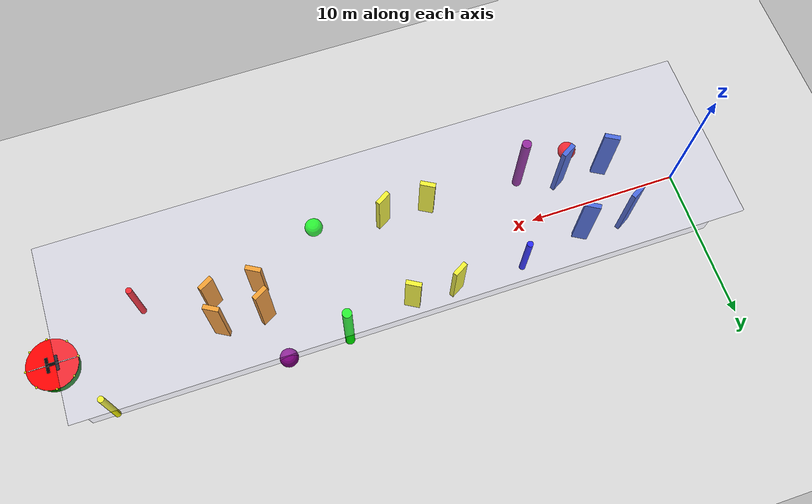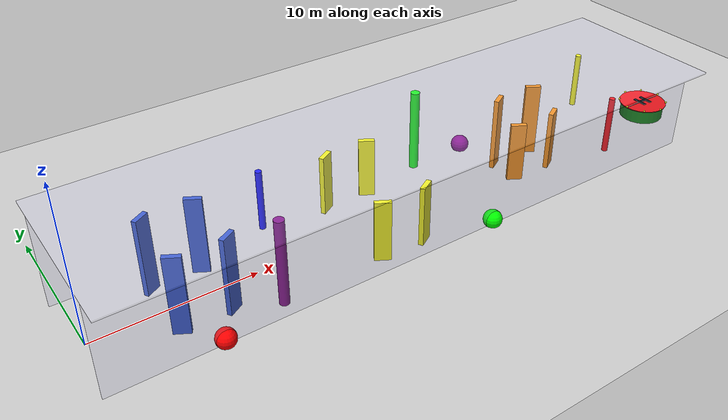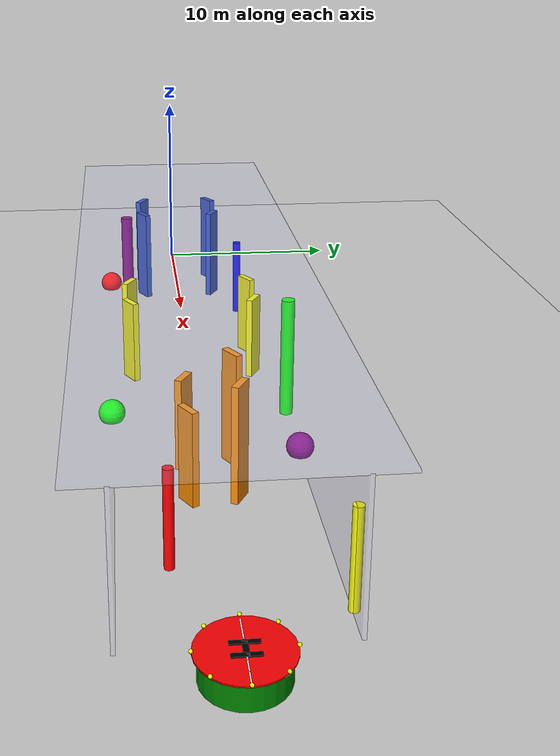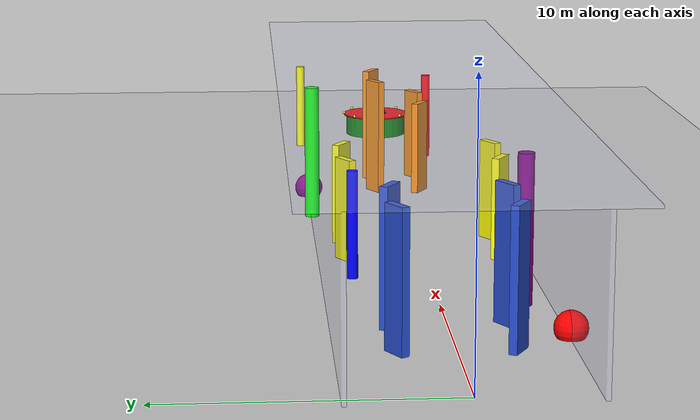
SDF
<sdf version="1.7">
 <world name="default">
  <light name="sun" type="directional">
   <pose>0 0 10 0 -0 0</pose>
   <diffuse>0.8 0.8 0.8 1</diffuse>
   <specular>0.2 0.2 0.2 1</specular>
   <attenuation>
    <range>1000</range>
    <constant>0.9</constant>
    <linear>0.01</linear>
    <quadratic>0.001</quadratic>
   </attenuation>
   <direction>-0.5 0.1 -0.9</direction>
   <spot><inner_angle>0</inner_angle><outer_angle>0</outer_angle><falloff>0</falloff></spot>
  </light>
  <model name="ground_plane">
   <static>1</static>
   <link name="link">
    <collision name="collision">
     <geometry><plane><normal>0 0 1</normal><size>50 50</size></plane></geometry>
     <surface>
      <contact><collide_bitmask>65535</collide_bitmask></contact>
      <friction><ode><mu>100</mu><mu2>50</mu2></ode></friction>
     </surface>
    </collision>
    <visual name="visual">
     <cast_shadows>0</cast_shadows>
     <geometry><plane><normal>0 0 1</normal><size>100 100</size></plane></geometry>
     <material>
      <script><uri>file://media/materials/scripts/gazebo.material</uri><name>Gazebo/Grey</name></script>
     </material>
    </visual>
   </link>
  </model>
  <gravity>0 0 -9.8</gravity>
  <magnetic_field>6e-06 2.3e-05 -4.2e-05</magnetic_field>
  <atmosphere type="adiabatic"/>
  <physics type="ode">
   <max_step_size>0.001</max_step_size>
   <real_time_factor>1</real_time_factor>
   <real_time_update_rate>1000</real_time_update_rate>
  </physics>
  <spherical_coordinates>
   <surface_model>EARTH_WGS84</surface_model>
   <latitude_deg>0</latitude_deg>
   <longitude_deg>0</longitude_deg>
   <elevation>0</elevation>
   <heading_deg>0</heading_deg>
  </spherical_coordinates>
  <model name="corridor">
   <pose>20 0 0 0 -0 0</pose>
   <link name="Wall_0">
    <collision name="Wall_0_Collision">
     <geometry><box><size>41.15 0.15 6.0</size></box></geometry>
     <pose>0 0 3.0 0 -0 0</pose>
    </collision>
    <visual name="Wall_0_Visual">
     <pose>0 0 3.0 0 -0 0</pose>
     <geometry><box><size>41.15 0.15 6.0</size></box></geometry>
     <material>
      <script><uri>file://media/materials/scripts/gazebo.material</uri></script>
      <ambient>0.8 0.8 1 0.2</ambient>
      <diffuse>0.8 0.8 1 0.2</diffuse>
     </material>
     <meta><layer>0</layer></meta>
    </visual>
    <pose>0 4 0 0 -0 0</pose>
   </link>
   <link name="Wall_2">
    <collision name="Wall_2_Collision">
     <geometry><box><size>41.15 0.15 6.0</size></box></geometry>
     <pose>0 0 3.0 0 -0 0</pose>
    </collision>
    <visual name="Wall_2_Visual">
     <pose>0 0 3.0 0 -0 0</pose>
     <geometry><box><size>41.15 0.15 6.0</size></box></geometry>
     <material>
      <script><uri>file://media/materials/scripts/gazebo.material</uri></script>
      <ambient>0.8 0.8 1 0.2</ambient>
      <diffuse>0.8 0.8 1 0.2</diffuse>
     </material>
     <meta><layer>0</layer></meta>
    </visual>
    <pose>0 -4 0 0 -0 0</pose>
   </link>
   <static>1</static>
   <link name="roof_transparent">
    <pose>0 0 6.0 0 0 0</pose>
    <collision name="roof_collision"><geometry><box><size>41.15 11 0.1</size></box></geometry></collision>
    <visual name="roof_visual">
     <geometry><box><size>41.15 11 0.1</size></box></geometry>
     <material>
      <ambient>0.8 0.8 1 0.2</ambient>
      <diffuse>0.8 0.8 1 0.2</diffuse>
      <specular>0.9 0.9 0.9 0.2</specular>
     </material>
     <transparency>0.8</transparency>
    </visual>
   </link>
  </model>
  <model name="helipad_marker_taller_base_1m">
   <static>true</static>
   <link name="helipad_link">
    <visual name="helipad_base">
     <geometry><cylinder><radius>1.5</radius><length>1.0</length></cylinder></geometry>
     <material><ambient>0 0.4 0 1</ambient><diffuse>0 0.5 0 1</diffuse></material>
     <pose>0 0 0.5 0 0 0</pose>
    </visual>
    <visual name="outer_ring">
     <geometry><cylinder><radius>1.65</radius><length>0.05</length></cylinder></geometry>
     <material><ambient>1 0 0 1</ambient><diffuse>1 0 0 1</diffuse></material>
     <pose>0 0 1.02 0 0 0</pose>
    </visual>
    <visual name="line_1">
     <geometry><box><size>3 0.05 0.02</size></box></geometry>
     <material><ambient>1 1 1 1</ambient><diffuse>1 1 1 1</diffuse></material>
     <pose>0 0 1.04 0 0 0</pose>
    </visual>
    <visual name="line_2">
     <geometry><box><size>2 0.05 0.02</size></box></geometry>
     <material><ambient>1 1 1 1</ambient><diffuse>1 1 1 1</diffuse></material>
     <pose>0 0 1.06 0 0 0</pose>
    </visual>
    <visual name="line_3">
     <geometry><box><size>1 0.05 0.02</size></box></geometry>
     <material><ambient>1 1 1 1</ambient><diffuse>1 1 1 1</diffuse></material>
     <pose>0 0 1.08 0 0 0</pose>
    </visual>
    <visual name="helipad_H1">
     <geometry><box><size>0.2 1.0 0.04</size></box></geometry>
     <material><ambient>0 0 0 1</ambient><diffuse>0 0 0 1</diffuse></material>
     <pose>-0.3 0 1.09 0 0 0</pose>
    </visual>
    <visual name="helipad_H2">
     <geometry><box><size>0.2 1.0 0.04</size></box></geometry>
     <material><ambient>0 0 0 1</ambient><diffuse>0 0 0 1</diffuse></material>
     <pose>0.3 0 1.09 0 0 0</pose>
    </visual>
    <visual name="helipad_H3">
     <geometry><box><size>0.8 0.2 0.04</size></box></geometry>
     <material><ambient>0 0 0 1</ambient><diffuse>0 0 0 1</diffuse></material>
     <pose>0 0 1.09 0 0 0</pose>
    </visual>
    <visual name="light_0">
     <geometry><sphere><radius>0.07</radius></sphere></geometry>
     <material><ambient>1 1 0 1</ambient><diffuse>1 1 0 1</diffuse></material>
     <pose>1.65 0 1.10 0 0 0</pose>
    </visual>
    <visual name="light_1">
     <geometry><sphere><radius>0.07</radius></sphere></geometry>
     <material><ambient>1 1 0 1</ambient><diffuse>1 1 0 1</diffuse></material>
     <pose>1.165 1.165 1.10 0 0 0</pose>
    </visual>
    <visual name="light_2">
     <geometry><sphere><radius>0.07</radius></sphere></geometry>
     <material><ambient>1 1 0 1</ambient><diffuse>1 1 0 1</diffuse></material>
     <pose>0 1.65 1.10 0 0 0</pose>
    </visual>
    <visual name="light_3">
     <geometry><sphere><radius>0.07</radius></sphere></geometry>
     <material><ambient>1 1 0 1</ambient><diffuse>1 1 0 1</diffuse></material>
     <pose>-1.165 1.165 1.10 0 0 0</pose>
    </visual>
    <visual name="light_4">
     <geometry><sphere><radius>0.07</radius></sphere></geometry>
     <material><ambient>1 1 0 1</ambient><diffuse>1 1 0 1</diffuse></material>
     <pose>-1.65 0 1.10 0 0 0</pose>
    </visual>
    <visual name="light_5">
     <geometry><sphere><radius>0.07</radius></sphere></geometry>
     <material><ambient>1 1 0 1</ambient><diffuse>1 1 0 1</diffuse></material>
     <pose>-1.165 -1.165 1.10 0 0 0</pose>
    </visual>
    <visual name="light_6">
     <geometry><sphere><radius>0.07</radius></sphere></geometry>
     <material><ambient>1 1 0 1</ambient><diffuse>1 1 0 1</diffuse></material>
     <pose>0 -1.65 1.10 0 0 0</pose>
    </visual>
    <visual name="light_7">
     <geometry><sphere><radius>0.07</radius></sphere></geometry>
     <material><ambient>1 1 0 1</ambient><diffuse>1 1 0 1</diffuse></material>
     <pose>1.165 -1.165 1.10 0 0 0</pose>
    </visual>
   </link>
   <link name="pillar_box">
    <visual name="pillar_visual">
     <geometry><box><size>1 1 0.3</size></box></geometry>
     <material><ambient>0.4 0.4 0.4 1</ambient><diffuse>0.5 0.5 0.5 1</diffuse></material>
     <pose>0 0 -0.15 0 0 0</pose>
    </visual>
    <collision name="pillar_collision">
     <geometry><box><size>1 1 0.3</size></box></geometry>
     <pose>0 0 -0.15 0 0 0</pose>
    </collision>
   </link>
   <pose>42 0 0 0 0 0</pose>
  </model>
  <model name="red_ball_only">
   <pose>6 -4 0.3 0 0 0</pose>
   <link name="link">
    <collision name="collision"><geometry><sphere><radius>0.6</radius></sphere></geometry></collision>
    <visual name="visual">
     <geometry><sphere><radius>0.6</radius></sphere></geometry>
     <material><ambient>1 0 0 1</ambient><diffuse>1 0 0 1</diffuse><specular>0.3 0.1 0.1 1</specular></material>
    </visual>
   </link>
  </model>
  <model name="green_ball_only">
   <pose>24 -4 0.3 0 0 0</pose>
   <link name="link">
    <collision name="collision"><geometry><sphere><radius>0.6</radius></sphere></geometry></collision>
    <visual name="visual">
     <geometry><sphere><radius>0.6</radius></sphere></geometry>
     <material><ambient>0 1 0 1</ambient><diffuse>0 1 0 1</diffuse><specular>0.1 0.3 0.1 1</specular></material>
    </visual>
   </link>
  </model>
  <model name="purple_ball_only">
   <pose>28 4 0.3 0 0 0</pose>
   <link name="link">
    <collision name="collision"><geometry><sphere><radius>0.6</radius></sphere></geometry></collision>
    <visual name="visual">
     <geometry><sphere><radius>0.6</radius></sphere></geometry>
     <material>
      <ambient>0.5 0 0.5 1</ambient>
      <diffuse>0.5 0 0.5 1</diffuse>
      <specular>0.3 0 0.3 1</specular>
     </material>
    </visual>
   </link>
  </model>
  <model name="ring_tunnel_1">
   <static>true</static>
   <link name="wall_2">
    <pose>7.5 2.0 2.5 0 0 1.047</pose>
    <collision name="collision_2"><geometry><box><size>0.3 1.0 5</size></box></geometry></collision>
    <visual name="visual_2">
     <geometry><box><size>0.3 1.0 5</size></box></geometry>
     <material>
      <script><uri>file://media/materials/scripts/gazebo.material</uri><name>Gazebo/Blue</name></script>
     </material>
    </visual>
   </link>
   <link name="wall_3">
    <pose>4.5 2.0 2.5 0 0 2.094</pose>
    <collision name="collision_3"><geometry><box><size>0.3 1.0 5</size></box></geometry></collision>
    <visual name="visual_3">
     <geometry><box><size>0.3 1.0 5</size></box></geometry>
     <material>
      <script><uri>file://media/materials/scripts/gazebo.material</uri><name>Gazebo/Blue</name></script>
     </material>
    </visual>
   </link>
   <link name="wall_5">
    <pose>4.5 -2.0 2.5 0 0 -2.094</pose>
    <collision name="collision_5"><geometry><box><size>0.3 1.0 5</size></box></geometry></collision>
    <visual name="visual_5">
     <geometry><box><size>0.3 1.0 5</size></box></geometry>
     <material>
      <script><uri>file://media/materials/scripts/gazebo.material</uri><name>Gazebo/Blue</name></script>
     </material>
    </visual>
   </link>
   <link name="wall_6">
    <pose>7.5 -2.0 2.5 0 0 -1.047</pose>
    <collision name="collision_6"><geometry><box><size>0.3 1.0 5</size></box></geometry></collision>
    <visual name="visual_6">
     <geometry><box><size>0.3 1.0 5</size></box></geometry>
     <material>
      <script><uri>file://media/materials/scripts/gazebo.material</uri><name>Gazebo/Blue</name></script>
     </material>
    </visual>
   </link>
  </model>
  <model name="ring_tunnel_2">
   <static>true</static>
   <link name="wall_2">
    <pose>19.5 3.0 2.0 0 0 1.047</pose>
    <collision name="collision_2"><geometry><box><size>0.3 1.0 4</size></box></geometry></collision>
    <visual name="visual_2">
     <geometry><box><size>0.3 1.0 4</size></box></geometry>
     <material><ambient>1 1 0 1</ambient><diffuse>1 1 0 1</diffuse></material>
    </visual>
   </link>
   <link name="wall_3">
    <pose>16.5 3.0 2.0 0 0 2.094</pose>
    <collision name="collision_3"><geometry><box><size>0.3 1.0 4</size></box></geometry></collision>
    <visual name="visual_3">
     <geometry><box><size>0.3 1.0 4</size></box></geometry>
     <material><ambient>1 1 0 1</ambient><diffuse>1 1 0 1</diffuse></material>
    </visual>
   </link>
   <link name="wall_5">
    <pose>16.5 -3.0 2.0 0 0 -2.094</pose>
    <collision name="collision_5"><geometry><box><size>0.3 1.0 4</size></box></geometry></collision>
    <visual name="visual_5">
     <geometry><box><size>0.3 1.0 4</size></box></geometry>
     <material><ambient>1 1 0 1</ambient><diffuse>1 1 0 1</diffuse></material>
    </visual>
   </link>
   <link name="wall_6">
    <pose>19.5 -3.0 2.0 0 0 -1.047</pose>
    <collision name="collision_6"><geometry><box><size>0.3 1.0 4</size></box></geometry></collision>
    <visual name="visual_6">
     <geometry><box><size>0.3 1.0 4</size></box></geometry>
     <material><ambient>1 1 0 1</ambient><diffuse>1 1 0 1</diffuse></material>
    </visual>
   </link>
  </model>
  <model name="ring_tunnel_3">
   <static>true</static>
   <link name="wall_2">
    <pose>31.5 1.0 2.5 0 0 1.047</pose>
    <collision name="collision_2"><geometry><box><size>0.3 1.0 5</size></box></geometry></collision>
    <visual name="visual_2">
     <geometry><box><size>0.3 1.0 5</size></box></geometry>
     <material><ambient>1 0.55 0 1</ambient><diffuse>1 0.55 0 1</diffuse></material>
    </visual>
   </link>
   <link name="wall_3">
    <pose>28.5 1.0 2.5 0 0 2.094</pose>
    <collision name="collision_3"><geometry><box><size>0.3 1.0 5</size></box></geometry></collision>
    <visual name="visual_3">
     <geometry><box><size>0.3 1.0 5</size></box></geometry>
     <material><ambient>1 0.55 0 1</ambient><diffuse>1 0.55 0 1</diffuse></material>
    </visual>
   </link>
   <link name="wall_5">
    <pose>28.5 -1.0 1.5 0 0 -2.094</pose>
    <collision name="collision_5"><geometry><box><size>0.3 1.0 5</size></box></geometry></collision>
    <visual name="visual_5">
     <geometry><box><size>0.3 1.0 5</size></box></geometry>
     <material><ambient>1 0.55 0 1</ambient><diffuse>1 0.55 0 1</diffuse></material>
    </visual>
   </link>
   <link name="wall_6">
    <pose>31.5 -1.0 1.5 0 0 -1.047</pose>
    <collision name="collision_6"><geometry><box><size>0.3 1.0 5</size></box></geometry></collision>
    <visual name="visual_6">
     <geometry><box><size>0.3 1.0 5</size></box></geometry>
     <material><ambient>1 0.55 0 1</ambient><diffuse>1 0.55 0 1</diffuse></material>
    </visual>
   </link>
  </model>
  <model name="purpl7e_cylinder">
   <pose>10 -3 2.5 0 0 0</pose>
   <static>1</static>
   <link name="link">
    <collision name="collision">
     <geometry><cylinder><radius>0.3</radius><length>6.0</length></cylinder></geometry>
    </collision>
    <visual name="visual">
     <geometry><cylinder><radius>0.3</radius><length>6.0</length></cylinder></geometry>
     <material>
      <ambient>0.5 0 0.5 1</ambient>
      <diffuse>0.5 0 0.5 1</diffuse>
      <specular>0.3 0.1 0.4 1</specular>
     </material>
    </visual>
   </link>
  </model>
  <model name="purpخl7e_cylinder">
   <pose>12 3 2.5 0 0 0</pose>
   <static>1</static>
   <link name="link">
    <collision name="collision">
     <geometry><cylinder><radius>0.2</radius><length>5.0</length></cylinder></geometry>
    </collision>
    <visual name="visual">
     <geometry><cylinder><radius>0.2</radius><length>4.0</length></cylinder></geometry>
     <material><ambient>0 0 1 1</ambient><diffuse>0 0 1 1</diffuse><specular>0.1 0.1 0.3 1</specular></material>
    </visual>
   </link>
  </model>
  <model name="purpl77e_cylinder">
   <pose>39 4 2.0 0 0 0</pose>
   <static>1</static>
   <link name="link">
    <collision name="collision">
     <geometry><cylinder><radius>0.2</radius><length>4.0</length></cylinder></geometry>
    </collision>
    <visual name="visual">
     <geometry><cylinder><radius>0.2</radius><length>4.0</length></cylinder></geometry>
     <material><ambient>1 1 0 1</ambient><diffuse>1 1 0 1</diffuse><specular>0.3 0.3 0 1</specular></material>
    </visual>
   </link>
  </model>
  <model name="purpl797e_cylinder">
   <pose>36 -2 2.0 0 0 0</pose>
   <static>1</static>
   <link name="link">
    <collision name="collision">
     <geometry><cylinder><radius>0.2</radius><length>4.0</length></cylinder></geometry>
    </collision>
    <visual name="visual">
     <geometry><cylinder><radius>0.2</radius><length>4.0</length></cylinder></geometry>
     <material><ambient>1 0 0 1</ambient><diffuse>1 0 0 1</diffuse><specular>0.3 0.1 0.1 1</specular></material>
    </visual>
   </link>
  </model>
  <model name="purpl877e_cylinder">
   <pose>24 4 2.5 0 0 0</pose>
   <static>1</static>
   <link name="link">
    <collision name="collision">
     <geometry><cylinder><radius>0.3</radius><length>6.0</length></cylinder></geometry>
    </collision>
    <visual name="visual">
     <geometry><cylinder><radius>0.3</radius><length>6.0</length></cylinder></geometry>
     <material><ambient>0 1 0 1</ambient><diffuse>0 1 0 1</diffuse><specular>0 0.3 0 1</specular></material>
    </visual>
   </link>
  </model>
 </world>
</sdf>
